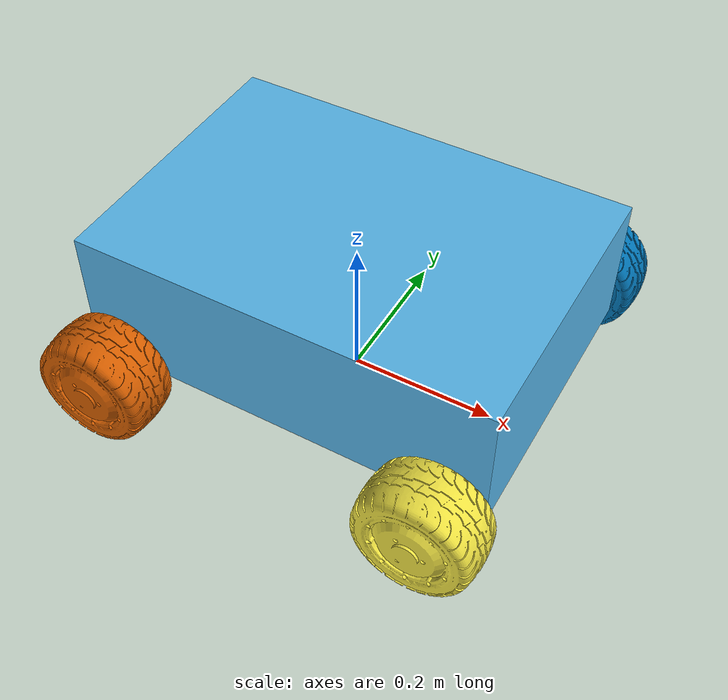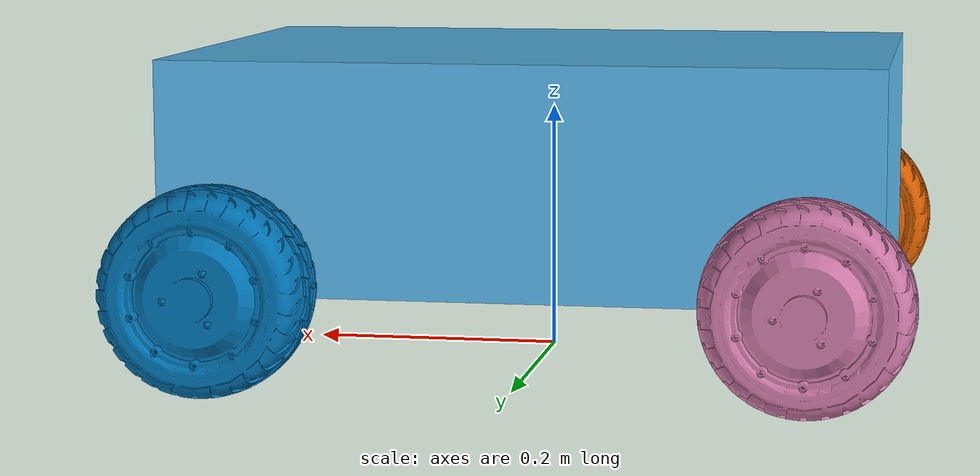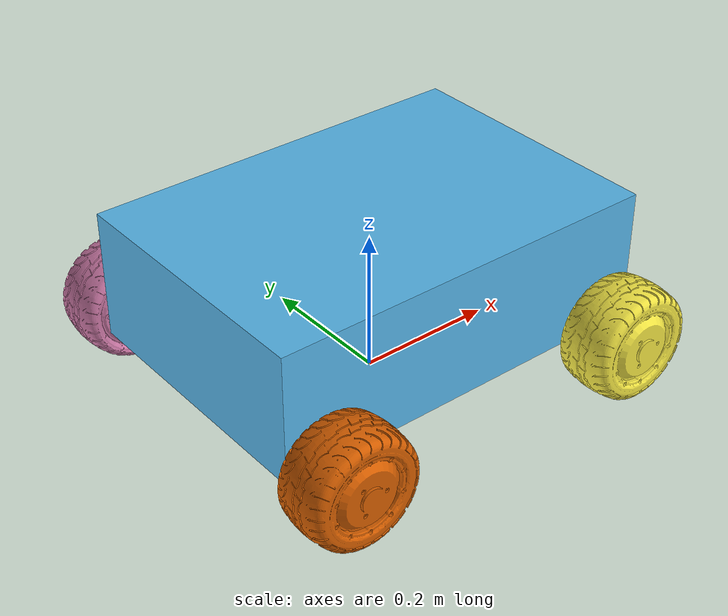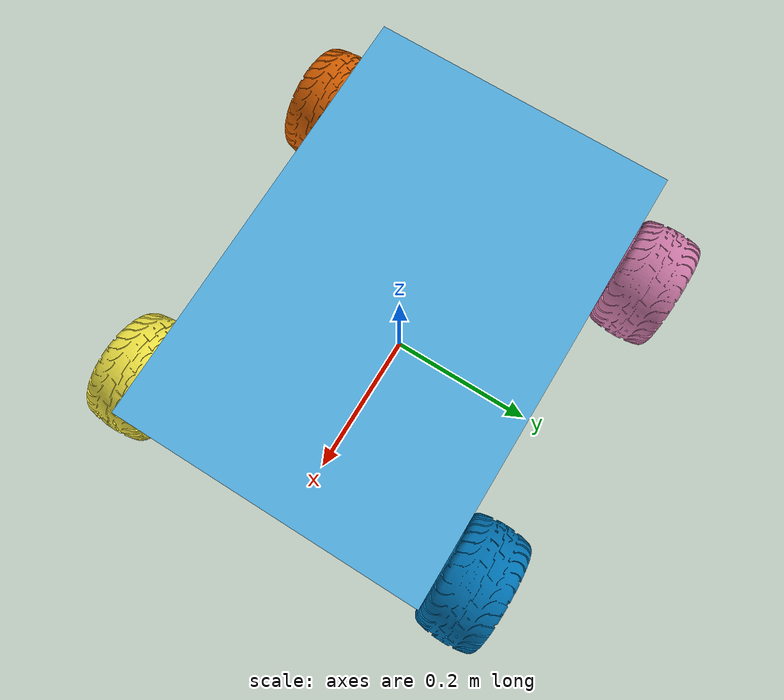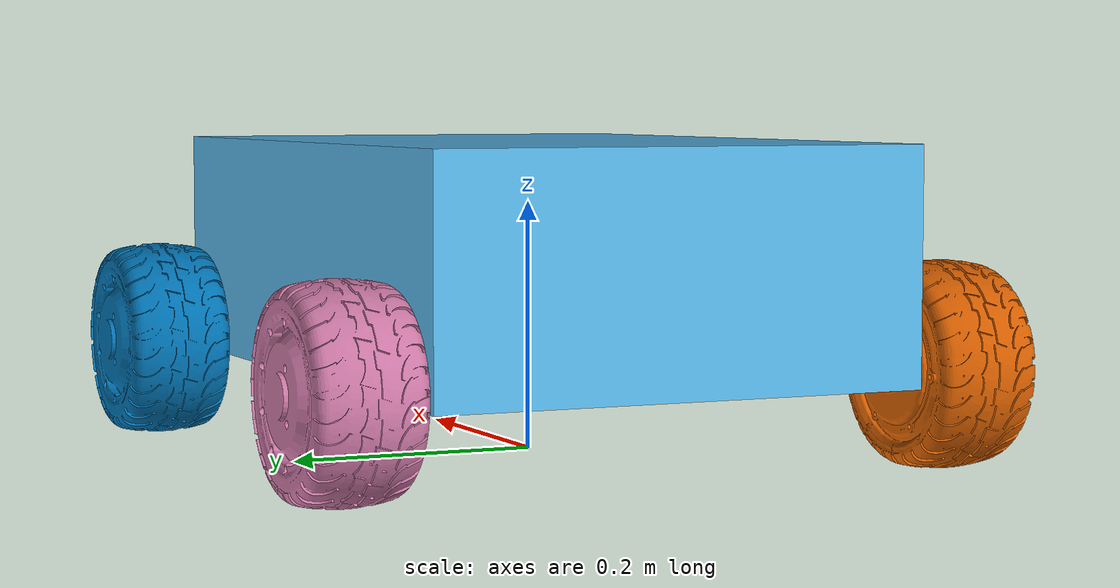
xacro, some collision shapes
<?xml version="1.0"?>
<robot name="scout_mini" xmlns:xacro="http://ros.org/wiki/xacro">
    <!-- ==== Wheel parameters (from manual & Meshlab) ==== -->
    <!-- 타이어 지름 ≈ 0.16m → 반지름 0.08m -->
    <xacro:property name="wheel_radius" value="0.08"/>
    <!-- Meshlab Bounding Box 두께 ≈ 0.132m -->
    <xacro:property name="wheel_length" value="0.08"/>

    <!-- ================= Vehicle Geometries ================= -->

    <!-- 바닥 기준 프레임 -->
    <link name="base_footprint" />

    <!-- base_footprint -> base_link 고정 변환 -->
    <joint name="base_footprint_to_base_link" type="fixed">
        <!-- 휠 중심이 지면에서 0.08m가 되도록: z = 0.18m (휠 중심 z = -0.10m) -->
        <origin xyz="0 0 0.18" rpy="0 0 0" />
        <parent link="base_footprint" />
        <child link="base_link" />
    </joint>

    <!-- Base link -->
    <link name="base_link">
        <visual>
            <origin xyz="0 0 0" rpy="1.57 0 -1.57" />
            <geometry>
                <mesh filename="package://scout_description/meshes/mini_body.dae" />
            </geometry>
        </visual>

        <!-- Meshlab 기준 scout_mini_base_link.dae Bounding Box
             Size: 0.389876 0.182181 0.560607 (X Y Z)
             -> 동일 축 기준 box collision으로 근사 -->
        <collision>
            <origin xyz="0 0 -0.0215" rpy="1.57 0 -1.57" />
            <geometry>
                <box size="0.389876 0.182181 0.560607" />
            </geometry>
        </collision>
    </link>

    <!-- 차체 관성 링크 (총 질량 23kg 중 19kg) -->
    <link name="inertial_link">
        <inertial>
            <mass value="19.0" />
            <!-- 질량중심을 base_link 원점과 일치시킴 -->
            <origin xyz="0 0 0" />
            <!-- 0.612 x 0.580 x 0.245 m, m=19kg 직육면체 근사 관성 -->
            <inertia
                ixx="0.627673"
                ixy="0.0"
                ixz="0.0"
                iyy="0.688068"
                iyz="0.0"
                izz="1.125661" />
        </inertial>
    </link>

    <joint name="inertial_joint" type="fixed">
        <origin xyz="0 0 0" rpy="0 0 0" />
        <parent link="base_link" />
        <child link="inertial_link" />
    </joint>

    <!-- ======================= Scout wheels ======================= -->
    <!-- Meshlab 기준 wheel.dae Bounding Box:
         Size: 0.159896 0.159953 0.132000
         -> 지름 ≈ 0.16m (반지름 ≈ 0.08m), 두께 ≈ 0.132m
         -> cylinder(radius=wheel_radius, length=wheel_length)로 근사 -->

    <!-- Front Right Wheel -->
    <link name="front_right_wheel_link">
        <inertial>
            <!-- 질량/관성 상향 (기존 1.0 / 0.002013 등에서 4배 증가) -->
            <mass value="4.0" />
            <origin xyz="0 0 0" />
            <inertia
                ixx="0.008052"
                ixy="0.0"
                ixz="0.0"
                iyy="0.008052"
                iyz="0.0"
                izz="0.010740" />
        </inertial>
        <visual>
            <origin xyz="0 -0.0375 0" rpy="0 0 0" />
            <geometry>
                <mesh filename="package://scout_description/meshes/right_wheel_mini_2.dae" />
            </geometry>
        </visual>
        <collision>
            <!-- 좌우 방향으로 1.5cm 바깥으로 이동 (joint의 Rx 때문에 base y로 투영됨) -->
            <origin xyz="0 -0.04 0" rpy="1.57 0 0" />
            <geometry>
                <cylinder length="${wheel_length}" radius="${wheel_radius}" />
            </geometry>
            <!-- v2와 동일 패턴의 contact / friction 설정 -->
            <surface>
                <contact>
                    <ode>
                        <min_depth>0.001</min_depth>
                        <kp>1000000000.0</kp>
                        <kd>0.0</kd>
                    </ode>
                </contact>
                <friction>
                    <ode>
                        <mu>0.9</mu>
                        <mu2>0.7</mu2>
                        <fdir1>1 0 0</fdir1>
                    </ode>
                </friction>
            </surface>
        </collision>
    </link>

    <joint name="front_right_wheel" type="continuous">
        <!-- 축 기준 트랙폭 0.420m → y = ±0.205 -->
        <origin xyz="0.2255 -0.205 -0.10" rpy="0 0 0" />
        <parent link="base_link" />
        <child link="front_right_wheel_link" />
        <!-- 회전축: link z축(바퀴 회전) -->
        <axis xyz="0 1 0" rpy="0 0 0" />
        <!-- 조인트 마찰 완화 (20 -> 4) -->
        <dynamics damping="0.0" friction="4.0" />
    </joint>

    <!-- Front Left Wheel -->
    <link name="front_left_wheel_link">
        <inertial>
            <mass value="4.0" />
            <origin xyz="0 0 0" />
            <inertia
                ixx="0.008052"
                ixy="0.0"
                ixz="0.0"
                iyy="0.008052"
                iyz="0.0"
                izz="0.010740" />
        </inertial>
        <visual>
            <origin xyz="0 0.0375 0" rpy="0 0 0" />
            <geometry>
                <mesh filename="package://scout_description/meshes/left_wheel_mini_2.dae" />
            </geometry>
        </visual>
        <collision>
            <origin xyz="0 0.04 0" rpy="-1.57 0 0" />
            <geometry>
                <cylinder length="${wheel_length}" radius="${wheel_radius}" />
            </geometry>
            <surface>
                <contact>
                    <ode>
                        <min_depth>0.001</min_depth>
                        <kp>1000000000.0</kp>
                        <kd>0.0</kd>
                    </ode>
                </contact>
                <friction>
                    <ode>
                        <mu>0.9</mu>
                        <mu2>0.7</mu2>
                        <fdir1>1 0 0</fdir1>
                    </ode>
                </friction>
            </surface>
        </collision>
    </link>

    <joint name="front_left_wheel" type="continuous">
        <origin xyz="0.2255 0.205 -0.10" rpy="0 0 0" />
        <parent link="base_link" />
        <child link="front_left_wheel_link" />
        <axis xyz="0 1 0" rpy="0 0 0" />
        <dynamics damping="0.0" friction="4.0" />
    </joint>

    <!-- Rear Right Wheel -->
    <link name="rear_right_wheel_link">
        <inertial>
            <mass value="4.0" />
            <origin xyz="0 0 0" />
            <inertia
                ixx="0.008052"
                ixy="0.0"
                ixz="0.0"
                iyy="0.008052"
                iyz="0.0"
                izz="0.010740" />
        </inertial>
        <visual>
            <origin xyz="0 -0.0375 0" rpy="0 0 0" />
            <geometry>
                <mesh filename="package://scout_description/meshes/right_wheel_mini_2.dae" />
            </geometry>
        </visual>
        <collision>
            <origin xyz="0 -0.04 0" rpy="1.57 0 0" />
            <geometry>
                <cylinder length="${wheel_length}" radius="${wheel_radius}" />
            </geometry>
            <surface>
                <contact>
                    <ode>
                        <min_depth>0.001</min_depth>
                        <kp>1000000000.0</kp>
                        <kd>0.0</kd>
                    </ode>
                </contact>
                <friction>
                    <ode>
                        <mu>0.9</mu>
                        <mu2>0.7</mu2>
                        <fdir1>1 0 0</fdir1>
                    </ode>
                </friction>
            </surface>
        </collision>
    </link>

    <joint name="rear_right_wheel" type="continuous">
        <origin xyz="-0.2255 -0.205 -0.10" rpy="0 0 0" />
        <parent link="base_link" />
        <child link="rear_right_wheel_link" />
        <axis xyz="0 1 0" rpy="0 0 0" />
        <dynamics damping="0.0" friction="4.0" />
    </joint>

    <!-- Rear Left Wheel -->
    <link name="rear_left_wheel_link">
        <inertial>
            <mass value="4.0" />
            <origin xyz="0 0 0" />
            <inertia
                ixx="0.008052"
                ixy="0.0"
                ixz="0.0"
                iyy="0.008052"
                iyz="0.0"
                izz="0.010740" />
        </inertial>
        <visual>
            <origin xyz="0 0.0375 0" rpy="0 0 0" />
            <geometry>
                <mesh filename="package://scout_description/meshes/left_wheel_mini_2.dae" />
            </geometry>
        </visual>
        <collision>
            <origin xyz="0 0.04 0" rpy="-1.57 0 0" />
            <geometry>
                <cylinder length="${wheel_length}" radius="${wheel_radius}" />
            </geometry>
            <surface>
                <contact>
                    <ode>
                        <min_depth>0.001</min_depth>
                        <kp>1000000000.0</kp>
                        <kd>0.0</kd>
                    </ode>
                </contact>
                <friction>
                    <ode>
                        <mu>0.9</mu>
                        <mu2>0.7</mu2>
                        <fdir1>1 0 0</fdir1>
                    </ode>
                </friction>
            </surface>
        </collision>
    </link>

    <joint name="rear_left_wheel" type="continuous">
        <origin xyz="-0.2255 0.205 -0.10" rpy="0 0 0" />
        <parent link="base_link" />
        <child link="rear_left_wheel_link" />
        <axis xyz="0 1 0" rpy="0 0 0" />
        <dynamics damping="0.0" friction="4.0" />
    </joint>

    <!-- ===================== Scout gazebo plugin ===================== -->
    <gazebo>
        <!-- Joint states -->
        <plugin
            filename="libignition-gazebo-joint-state-publisher-system.so"
            name="ignition::gazebo::systems::JointStatePublisher">
            <topic>joint_states</topic>
            <update_rate>50</update_rate>
            <joint_name>front_right_wheel</joint_name>
            <joint_name>front_left_wheel</joint_name>
            <joint_name>rear_right_wheel</joint_name>
            <joint_name>rear_left_wheel</joint_name>
        </plugin>

        <!-- Skid-steer DiffDrive -->
        <plugin
            filename="libignition-gazebo-diff-drive-system.so"
            name="ignition::gazebo::systems::DiffDrive">

            <left_joint>front_left_wheel</left_joint>
            <left_joint>rear_left_wheel</left_joint>
            <right_joint>front_right_wheel</right_joint>
            <right_joint>rear_right_wheel</right_joint>

            <!-- 메뉴얼 기준 접지 기준 트랙폭 0.490m / 모델 축 간격 0.420m -->
            <!-- 실제 축 간격(±0.205)을 반영하여 0.410으로 수정 -->
            <wheel_separation>0.490</wheel_separation>
            <wheel_radius>0.080</wheel_radius>

            <!-- torque는 그대로 두고, 속도/가속도 제한을 설정 -->
            <max_wheel_torque>100</max_wheel_torque>

            <max_linear_acceleration>2.0</max_linear_acceleration>
            <min_linear_acceleration>-2.0</min_linear_acceleration>
            <!-- 각가속도 한계 완화 (±2.0 -> ±1.0) -->
            <max_angular_acceleration>1.0</max_angular_acceleration>
            <min_angular_acceleration>-1.0</min_angular_acceleration>

            <max_linear_velocity>10.0</max_linear_velocity>
            <min_linear_velocity>-10.0</min_linear_velocity>
            <!-- 각속도 한계 완화 (±2.0 -> ±1.0) -->
            <max_angular_velocity>1.0</max_angular_velocity>
            <min_angular_velocity>-1.0</min_angular_velocity>

            <topic>cmd_vel</topic>
            <!-- 여기서 odom / tf / frame_id / child_frame_id는 제거 -->
        </plugin>

        <!-- Ground-truth Odometry (scout_v2.gazebo와 동일 구조, base_footprint 기준) -->
        <plugin
            filename="libignition-gazebo6-odometry-publisher-system"
            name="ignition::gazebo::systems::OdometryPublisher">
            <odom_frame>odom</odom_frame>
            <robot_base_frame>base_footprint</robot_base_frame>
            <odom_topic>odom</odom_topic>
            <tf_topic>tf</tf_topic>
            <dimensions>2</dimensions>
            <odom_publish_frequency>50</odom_publish_frequency>
            <gaussian_noise>0.001</gaussian_noise>
        </plugin>

    </gazebo>

</robot>
